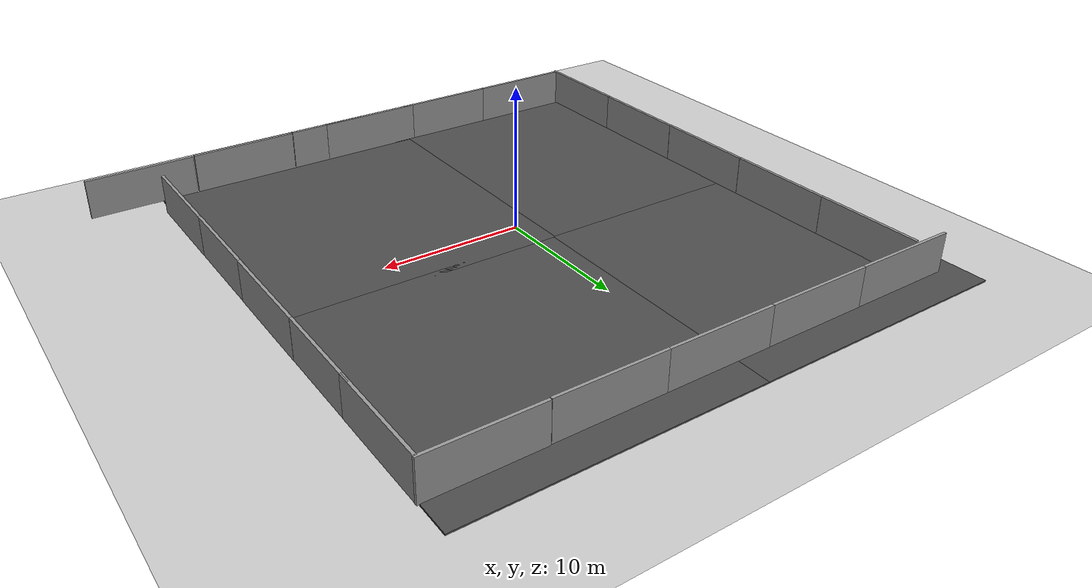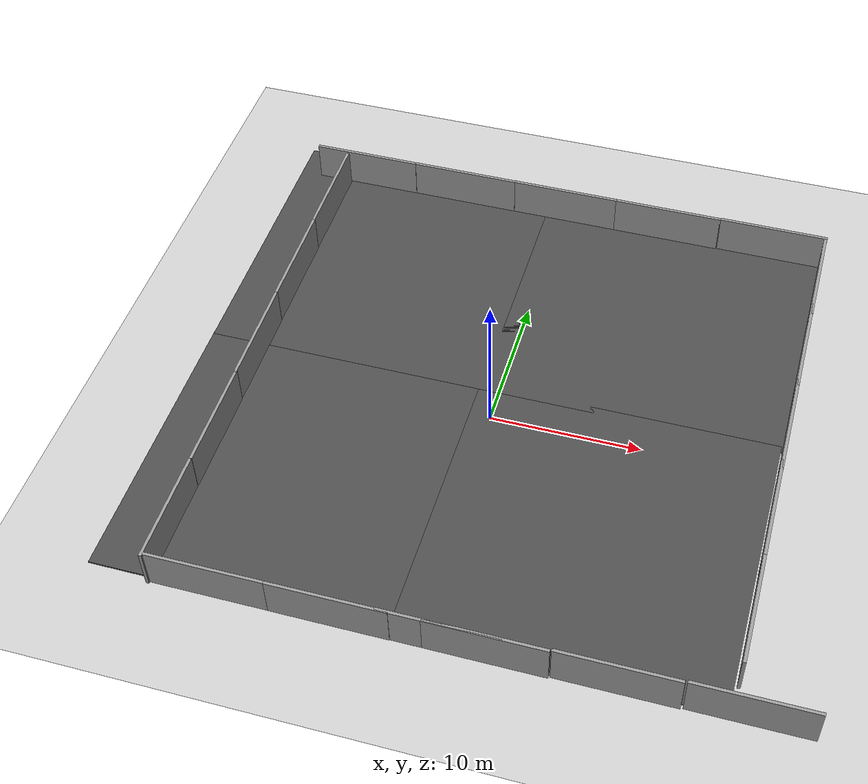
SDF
<sdf version="1.7">
 <world name="default">
  <model name="ground_plane">
   <static>1</static>
   <link name="link">
    <collision name="collision">
     <geometry><plane><normal>0 0 1</normal><size>100 100</size></plane></geometry>
     <surface><friction><ode><mu>100</mu><mu2>50</mu2></ode></friction></surface>
    </collision>
    <visual name="visual">
     <cast_shadows>0</cast_shadows>
     <geometry><plane><normal>0 0 1</normal><size>100 100</size></plane></geometry>
     <material>
      <script><uri>file://media/materials/scripts/gazebo.material</uri><name>Gazebo/Grey</name></script>
     </material>
    </visual>
   </link>
  </model>
  <model name="asphalt_plane">
   <static>1</static>
   <link name="link">
    <collision name="collision">
     <geometry><box><size>20 20 0.1</size></box></geometry>
     <surface><friction><ode><mu>100</mu><mu2>50</mu2></ode></friction></surface>
    </collision>
    <visual name="visual">
     <cast_shadows>0</cast_shadows>
     <geometry><box><size>20 20 0.1</size></box></geometry>
     <material>
      <script>
       <uri>model://asphalt_plane/materials/scripts</uri>
       <uri>model://asphalt_plane/materials/textures</uri>
       <name>vrc/asphalt</name>
      </script>
     </material>
    </visual>
   </link>
   <pose>-10.1692 -7.43707 0 0 -0 0</pose>
  </model>
  <model name="asphalt_plane_clone">
   <static>1</static>
   <link name="link">
    <collision name="collision">
     <geometry><box><size>20 20 0.1</size></box></geometry>
     <surface><friction><ode><mu>100</mu><mu2>50</mu2></ode></friction></surface>
    </collision>
    <visual name="visual">
     <cast_shadows>0</cast_shadows>
     <geometry><box><size>20 20 0.1</size></box></geometry>
     <material>
      <script>
       <uri>model://asphalt_plane/materials/scripts</uri>
       <uri>model://asphalt_plane/materials/textures</uri>
       <name>vrc/asphalt</name>
      </script>
     </material>
    </visual>
   </link>
   <pose>-10.1603 12.171 0 0 -0 0</pose>
  </model>
  <model name="asphalt_plane_clone_clone">
   <static>1</static>
   <link name="link">
    <collision name="collision">
     <geometry><box><size>20 20 0.1</size></box></geometry>
     <surface><friction><ode><mu>100</mu><mu2>50</mu2></ode></friction></surface>
    </collision>
    <visual name="visual">
     <cast_shadows>0</cast_shadows>
     <geometry><box><size>20 20 0.1</size></box></geometry>
     <material>
      <script>
       <uri>model://asphalt_plane/materials/scripts</uri>
       <uri>model://asphalt_plane/materials/textures</uri>
       <name>vrc/asphalt</name>
      </script>
     </material>
    </visual>
   </link>
   <pose>8.71597 12.1785 0 0 -0 0</pose>
  </model>
  <model name="asphalt_plane_clone_clone_0">
   <static>1</static>
   <link name="link">
    <collision name="collision">
     <geometry><box><size>20 20 0.1</size></box></geometry>
     <surface><friction><ode><mu>100</mu><mu2>50</mu2></ode></friction></surface>
    </collision>
    <visual name="visual">
     <cast_shadows>0</cast_shadows>
     <geometry><box><size>20 20 0.1</size></box></geometry>
     <material>
      <script>
       <uri>model://asphalt_plane/materials/scripts</uri>
       <uri>model://asphalt_plane/materials/textures</uri>
       <name>vrc/asphalt</name>
      </script>
     </material>
    </visual>
   </link>
   <pose>8.60996 -7.34898 0 0 -0 0</pose>
  </model>
  <model name="grey_wall">
   <static>1</static>
   <link name="link">
    <pose>0 0 1.4 0 -0 0</pose>
    <collision name="collision"><geometry><box><size>7.5 0.2 2.8</size></box></geometry></collision>
    <visual name="visual">
     <cast_shadows>0</cast_shadows>
     <geometry><box><size>7.5 0.2 2.8</size></box></geometry>
     <material>
      <script>
       <uri>model://grey_wall/materials/scripts</uri>
       <uri>model://grey_wall/materials/textures</uri>
       <name>vrc/grey_wall</name>
      </script>
     </material>
    </visual>
   </link>
   <pose>-4.8114 -17.6626 0 0 -0 0</pose>
  </model>
  <model name="grey_wall_clone">
   <static>1</static>
   <link name="link">
    <pose>0 0 1.4 0 -0 0</pose>
    <collision name="collision"><geometry><box><size>7.5 0.2 2.8</size></box></geometry></collision>
    <visual name="visual">
     <cast_shadows>0</cast_shadows>
     <geometry><box><size>7.5 0.2 2.8</size></box></geometry>
     <material>
      <script>
       <uri>model://grey_wall/materials/scripts</uri>
       <uri>model://grey_wall/materials/textures</uri>
       <name>vrc/grey_wall</name>
      </script>
     </material>
    </visual>
   </link>
   <pose>1.84642 -17.6367 0 0 -0 0</pose>
  </model>
  <model name="grey_wall_clone_0">
   <static>1</static>
   <link name="link">
    <pose>0 0 1.4 0 -0 0</pose>
    <collision name="collision"><geometry><box><size>7.5 0.2 2.8</size></box></geometry></collision>
    <visual name="visual">
     <cast_shadows>0</cast_shadows>
     <geometry><box><size>7.5 0.2 2.8</size></box></geometry>
     <material>
      <script>
       <uri>model://grey_wall/materials/scripts</uri>
       <uri>model://grey_wall/materials/textures</uri>
       <name>vrc/grey_wall</name>
      </script>
     </material>
    </visual>
   </link>
   <pose>4.62088 -17.6372 0 0 -0 0</pose>
  </model>
  <model name="grey_wall_clone_clone_clone">
   <static>1</static>
   <link name="link">
    <pose>0 0 1.4 0 -0 0</pose>
    <collision name="collision"><geometry><box><size>7.5 0.2 2.8</size></box></geometry></collision>
    <visual name="visual">
     <cast_shadows>0</cast_shadows>
     <geometry><box><size>7.5 0.2 2.8</size></box></geometry>
     <material>
      <script>
       <uri>model://grey_wall/materials/scripts</uri>
       <uri>model://grey_wall/materials/textures</uri>
       <name>vrc/grey_wall</name>
      </script>
     </material>
    </visual>
   </link>
   <pose>18.7544 16.0387 0 0 0 -1.56734</pose>
  </model>
  <model name="grey_wall_clone_clone_clone_clone">
   <static>1</static>
   <link name="link">
    <pose>0 0 1.4 0 -0 0</pose>
    <collision name="collision"><geometry><box><size>7.5 0.2 2.8</size></box></geometry></collision>
    <visual name="visual">
     <cast_shadows>0</cast_shadows>
     <geometry><box><size>7.5 0.2 2.8</size></box></geometry>
     <material>
      <script>
       <uri>model://grey_wall/materials/scripts</uri>
       <uri>model://grey_wall/materials/textures</uri>
       <name>vrc/grey_wall</name>
      </script>
     </material>
    </visual>
   </link>
   <pose>18.767 9.41754 0 0 0 -1.56734</pose>
  </model>
  <model name="grey_wall_clone_clone_clone_clone_0">
   <static>1</static>
   <link name="link">
    <pose>0 0 1.4 0 -0 0</pose>
    <collision name="collision"><geometry><box><size>7.5 0.2 2.8</size></box></geometry></collision>
    <visual name="visual">
     <cast_shadows>0</cast_shadows>
     <geometry><box><size>7.5 0.2 2.8</size></box></geometry>
     <material>
      <script>
       <uri>model://grey_wall/materials/scripts</uri>
       <uri>model://grey_wall/materials/textures</uri>
       <name>vrc/grey_wall</name>
      </script>
     </material>
    </visual>
   </link>
   <pose>18.7963 2.45369 0 0 0 -1.56734</pose>
  </model>
  <light name="sun" type="directional">
   <pose>0 0 10 0 -0 0</pose>
   <diffuse>0.8 0.8 0.8 1</diffuse>
   <specular>0.2 0.2 0.2 1</specular>
   <attenuation>
    <range>1000</range>
    <constant>0.9</constant>
    <linear>0.01</linear>
    <quadratic>0.001</quadratic>
   </attenuation>
   <direction>-0.5 0.1 -0.9</direction>
   <spot><inner_angle>0</inner_angle><outer_angle>0</outer_angle><falloff>0</falloff></spot>
  </light>
  <gravity>0 0 -9.8</gravity>
  <magnetic_field>6e-06 2.3e-05 -4.2e-05</magnetic_field>
  <atmosphere type="adiabatic"/>
  <physics name="default_physics" default="0" type="ode">
   <max_step_size>0.001</max_step_size>
   <real_time_factor>1</real_time_factor>
   <real_time_update_rate>1000</real_time_update_rate>
  </physics>
  <scene><ambient>0.4 0.4 0.4 1</ambient><background>0.7 0.7 0.7 1</background><shadows>1</shadows></scene>
  <audio><device>default</device></audio>
  <spherical_coordinates>
   <surface_model>EARTH_WGS84</surface_model>
   <latitude_deg>47.8406</latitude_deg>
   <longitude_deg>10.6199</longitude_deg>
   <elevation>740</elevation>
   <heading_deg>180</heading_deg>
  </spherical_coordinates>
  <model name="grey_wall_clone_0_clone">
   <static>1</static>
   <link name="link">
    <pose>0 0 1.4 0 -0 0</pose>
    <collision name="collision"><geometry><box><size>7.5 0.2 2.8</size></box></geometry></collision>
    <visual name="visual">
     <cast_shadows>0</cast_shadows>
     <geometry><box><size>7.5 0.2 2.8</size></box></geometry>
     <material>
      <script>
       <uri>model://grey_wall/materials/scripts</uri>
       <uri>model://grey_wall/materials/textures</uri>
       <name>vrc/grey_wall</name>
      </script>
     </material>
    </visual>
   </link>
   <pose>12.1902 -17.5514 0 0 -0 0</pose>
  </model>
  <model name="grey_wall_clone_0_clone_0">
   <static>1</static>
   <link name="link">
    <pose>0 0 1.4 0 -0 0</pose>
    <collision name="collision"><geometry><box><size>7.5 0.2 2.8</size></box></geometry></collision>
    <visual name="visual">
     <cast_shadows>0</cast_shadows>
     <geometry><box><size>7.5 0.2 2.8</size></box></geometry>
     <material>
      <script>
       <uri>model://grey_wall/materials/scripts</uri>
       <uri>model://grey_wall/materials/textures</uri>
       <name>vrc/grey_wall</name>
      </script>
     </material>
    </visual>
   </link>
   <pose>19.8158 -17.4905 0 0 -0 0</pose>
  </model>
  <model name="grey_wall_clone_0_clone_clone">
   <static>1</static>
   <link name="link">
    <pose>0 0 1.4 0 -0 0</pose>
    <collision name="collision"><geometry><box><size>7.5 0.2 2.8</size></box></geometry></collision>
    <visual name="visual">
     <cast_shadows>0</cast_shadows>
     <geometry><box><size>7.5 0.2 2.8</size></box></geometry>
     <material>
      <script>
       <uri>model://grey_wall/materials/scripts</uri>
       <uri>model://grey_wall/materials/textures</uri>
       <name>vrc/grey_wall</name>
      </script>
     </material>
    </visual>
   </link>
   <pose>15.1148 19.8134 0 0 -0 0</pose>
  </model>
  <model name="grey_wall_clone_0_clone_clone_0">
   <static>1</static>
   <link name="link">
    <pose>0 0 1.4 0 -0 0</pose>
    <collision name="collision"><geometry><box><size>7.5 0.2 2.8</size></box></geometry></collision>
    <visual name="visual">
     <cast_shadows>0</cast_shadows>
     <geometry><box><size>7.5 0.2 2.8</size></box></geometry>
     <material>
      <script>
       <uri>model://grey_wall/materials/scripts</uri>
       <uri>model://grey_wall/materials/textures</uri>
       <name>vrc/grey_wall</name>
      </script>
     </material>
    </visual>
   </link>
   <pose>7.56876 19.7665 0 0 -0 0</pose>
  </model>
  <model name="grey_wall_clone_0_clone_clone_1">
   <static>1</static>
   <link name="link">
    <pose>0 0 1.4 0 -0 0</pose>
    <collision name="collision"><geometry><box><size>7.5 0.2 2.8</size></box></geometry></collision>
    <visual name="visual">
     <cast_shadows>0</cast_shadows>
     <geometry><box><size>7.5 0.2 2.8</size></box></geometry>
     <material>
      <script>
       <uri>model://grey_wall/materials/scripts</uri>
       <uri>model://grey_wall/materials/textures</uri>
       <name>vrc/grey_wall</name>
      </script>
     </material>
    </visual>
   </link>
   <pose>0.087076 19.7668 0 0 -0 0</pose>
  </model>
  <model name="grey_wall_clone_0_clone_clone_2">
   <static>1</static>
   <link name="link">
    <pose>0 0 1.4 0 -0 0</pose>
    <collision name="collision"><geometry><box><size>7.5 0.2 2.8</size></box></geometry></collision>
    <visual name="visual">
     <cast_shadows>0</cast_shadows>
     <geometry><box><size>7.5 0.2 2.8</size></box></geometry>
     <material>
      <script>
       <uri>model://grey_wall/materials/scripts</uri>
       <uri>model://grey_wall/materials/textures</uri>
       <name>vrc/grey_wall</name>
      </script>
     </material>
    </visual>
   </link>
   <pose>-7.39509 19.7552 0 0 -0 0</pose>
  </model>
  <model name="grey_wall_clone_0_clone_clone_3">
   <static>1</static>
   <link name="link">
    <pose>0 0 1.4 0 -0 0</pose>
    <collision name="collision"><geometry><box><size>7.5 0.2 2.8</size></box></geometry></collision>
    <visual name="visual">
     <cast_shadows>0</cast_shadows>
     <geometry><box><size>7.5 0.2 2.8</size></box></geometry>
     <material>
      <script>
       <uri>model://grey_wall/materials/scripts</uri>
       <uri>model://grey_wall/materials/textures</uri>
       <name>vrc/grey_wall</name>
      </script>
     </material>
    </visual>
   </link>
   <pose>-14.9012 19.7415 0 0 -0 0</pose>
  </model>
  <model name="grey_wall_clone_clone_clone_clone_1">
   <static>1</static>
   <link name="link">
    <pose>0 0 1.4 0 -0 0</pose>
    <collision name="collision"><geometry><box><size>7.5 0.2 2.8</size></box></geometry></collision>
    <visual name="visual">
     <cast_shadows>0</cast_shadows>
     <geometry><box><size>7.5 0.2 2.8</size></box></geometry>
     <material>
      <script>
       <uri>model://grey_wall/materials/scripts</uri>
       <uri>model://grey_wall/materials/textures</uri>
       <name>vrc/grey_wall</name>
      </script>
     </material>
    </visual>
   </link>
   <pose>18.8058 -4.41342 0 0 0 -1.56734</pose>
  </model>
  <model name="grey_wall_clone_clone_clone_clone_2">
   <static>1</static>
   <link name="link">
    <pose>0 0 1.4 0 -0 0</pose>
    <collision name="collision"><geometry><box><size>7.5 0.2 2.8</size></box></geometry></collision>
    <visual name="visual">
     <cast_shadows>0</cast_shadows>
     <geometry><box><size>7.5 0.2 2.8</size></box></geometry>
     <material>
      <script>
       <uri>model://grey_wall/materials/scripts</uri>
       <uri>model://grey_wall/materials/textures</uri>
       <name>vrc/grey_wall</name>
      </script>
     </material>
    </visual>
   </link>
   <pose>18.8343 -11.7301 0 0 0 -1.56734</pose>
  </model>
  <model name="grey_wall_clone_clone_clone_clone_0_clone_0_clone">
   <static>1</static>
   <link name="link">
    <pose>0 0 1.4 0 -0 0</pose>
    <collision name="collision"><geometry><box><size>7.5 0.2 2.8</size></box></geometry></collision>
    <visual name="visual">
     <cast_shadows>0</cast_shadows>
     <geometry><box><size>7.5 0.2 2.8</size></box></geometry>
     <material>
      <script>
       <uri>model://grey_wall/materials/scripts</uri>
       <uri>model://grey_wall/materials/textures</uri>
       <name>vrc/grey_wall</name>
      </script>
     </material>
    </visual>
   </link>
   <pose>-16.2948 15.7341 0 0 0 -1.56734</pose>
  </model>
  <model name="grey_wall_clone_clone_clone_clone_0_clone_0_clone_0">
   <static>1</static>
   <link name="link">
    <pose>0 0 1.4 0 -0 0</pose>
    <collision name="collision"><geometry><box><size>7.5 0.2 2.8</size></box></geometry></collision>
    <visual name="visual">
     <cast_shadows>0</cast_shadows>
     <geometry><box><size>7.5 0.2 2.8</size></box></geometry>
     <material>
      <script>
       <uri>model://grey_wall/materials/scripts</uri>
       <uri>model://grey_wall/materials/textures</uri>
       <name>vrc/grey_wall</name>
      </script>
     </material>
    </visual>
   </link>
   <pose>-16.2504 8.28607 0 0 0 -1.56734</pose>
  </model>
  <model name="grey_wall_clone_clone_clone_clone_0_clone_0_clone_1">
   <static>1</static>
   <link name="link">
    <pose>0 0 1.4 0 -0 0</pose>
    <collision name="collision"><geometry><box><size>7.5 0.2 2.8</size></box></geometry></collision>
    <visual name="visual">
     <cast_shadows>0</cast_shadows>
     <geometry><box><size>7.5 0.2 2.8</size></box></geometry>
     <material>
      <script>
       <uri>model://grey_wall/materials/scripts</uri>
       <uri>model://grey_wall/materials/textures</uri>
       <name>vrc/grey_wall</name>
      </script>
     </material>
    </visual>
   </link>
   <pose>-16.2067 0.782819 0 0 0 -1.56734</pose>
  </model>
  <model name="grey_wall_clone_clone_clone_clone_0_clone_0_clone_2">
   <static>1</static>
   <link name="link">
    <pose>0 0 1.4 0 -0 0</pose>
    <collision name="collision"><geometry><box><size>7.5 0.2 2.8</size></box></geometry></collision>
    <visual name="visual">
     <cast_shadows>0</cast_shadows>
     <geometry><box><size>7.5 0.2 2.8</size></box></geometry>
     <material>
      <script>
       <uri>model://grey_wall/materials/scripts</uri>
       <uri>model://grey_wall/materials/textures</uri>
       <name>vrc/grey_wall</name>
      </script>
     </material>
    </visual>
   </link>
   <pose>-16.1576 -6.6062 0 0 0 -1.56734</pose>
  </model>
  <model name="grey_wall_clone_clone_clone_clone_0_clone_0_clone_3">
   <static>1</static>
   <link name="link">
    <pose>0 0 1.4 0 -0 0</pose>
    <collision name="collision"><geometry><box><size>7.5 0.2 2.8</size></box></geometry></collision>
    <visual name="visual">
     <cast_shadows>0</cast_shadows>
     <geometry><box><size>7.5 0.2 2.8</size></box></geometry>
     <material>
      <script>
       <uri>model://grey_wall/materials/scripts</uri>
       <uri>model://grey_wall/materials/textures</uri>
       <name>vrc/grey_wall</name>
      </script>
     </material>
    </visual>
   </link>
   <pose>-16.1417 -14.1214 0 0 0 -1.56734</pose>
  </model>
  <model name="grey_wall_clone_1">
   <static>1</static>
   <link name="link">
    <pose>0 0 1.4 0 -0 0</pose>
    <collision name="collision"><geometry><box><size>7.5 0.2 2.8</size></box></geometry></collision>
    <visual name="visual">
     <cast_shadows>0</cast_shadows>
     <geometry><box><size>7.5 0.2 2.8</size></box></geometry>
     <material>
      <script>
       <uri>model://grey_wall/materials/scripts</uri>
       <uri>model://grey_wall/materials/textures</uri>
       <name>vrc/grey_wall</name>
      </script>
     </material>
    </visual>
   </link>
   <pose>-12.2995 -17.6558 0 0 -0 0</pose>
  </model>
 </world>
</sdf>
